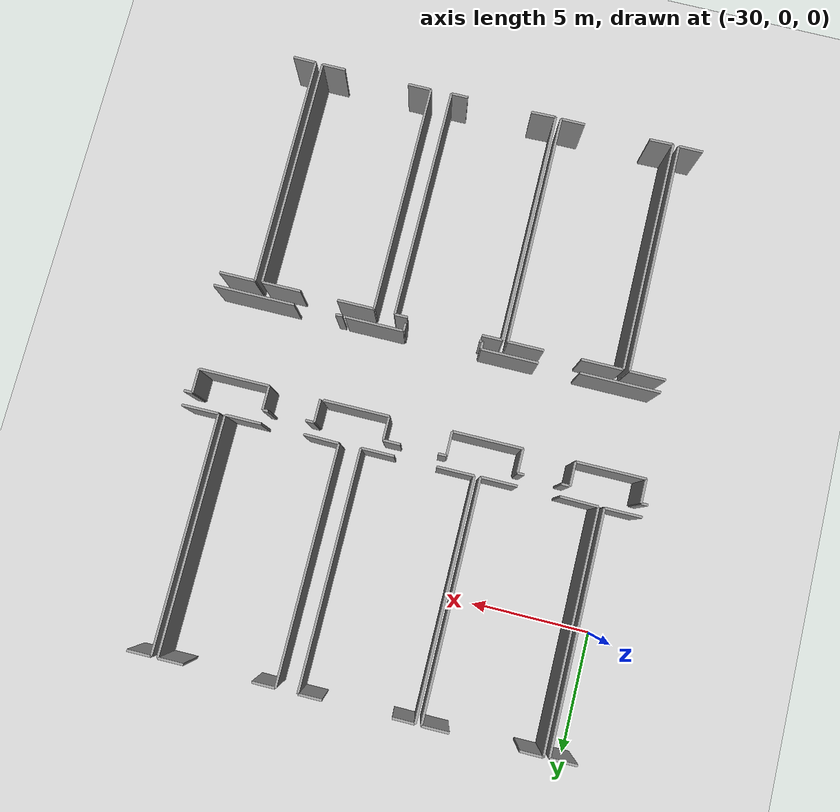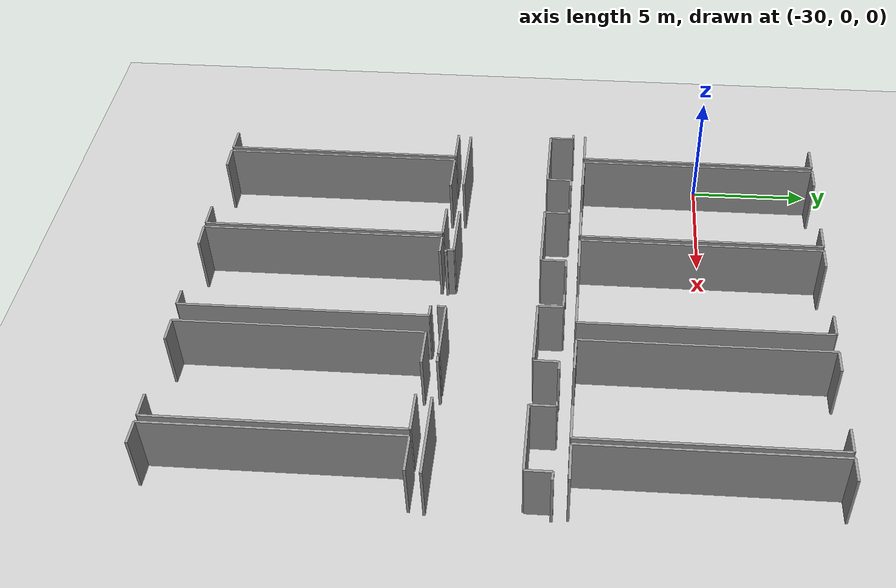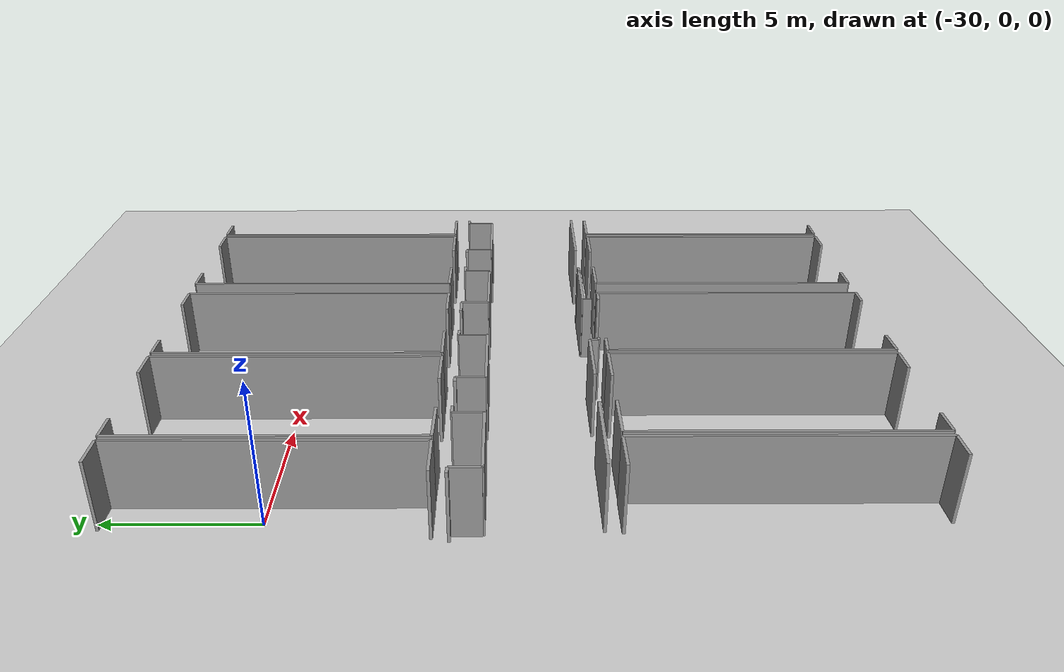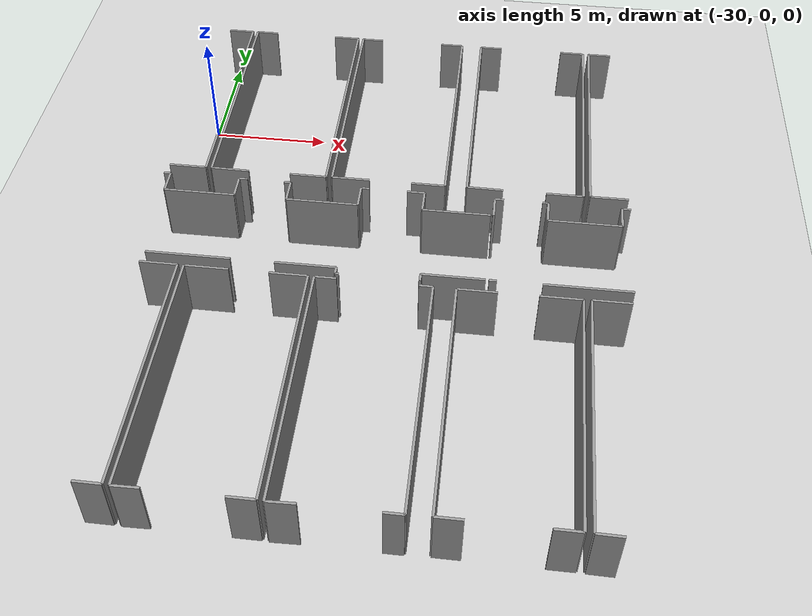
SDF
<sdf version="1.6">
 <world name="default">
  <model name="ground_plane">
   <static>1</static>
   <link name="link">
    <collision name="collision">
     <geometry><plane><normal>0 0 1</normal><size>100 100</size></plane></geometry>
     <surface><friction><ode><mu>100</mu><mu2>50</mu2></ode></friction></surface>
    </collision>
    <visual name="visual">
     <cast_shadows>0</cast_shadows>
     <geometry><plane><normal>0 0 1</normal><size>100 100</size></plane></geometry>
     <material>
      <script><uri>file://media/materials/scripts/gazebo.material</uri><name>Gazebo/Grey</name></script>
     </material>
    </visual>
   </link>
  </model>
  <model name="50055639">
   <static>1</static>
   <link name="Wall_63">
    <collision name="Wall_63_Collision">
     <geometry><box><size>0.287005420226 0.1 2.5</size></box></geometry>
     <pose>0.143502710113 0 1.25 0 0 0</pose>
    </collision>
    <visual name="Wall_63_Visual">
     <pose>0.143502710113 0 1.25 0 0 0</pose>
     <geometry><box><size>0.287005420226 0.1 2.5</size></box></geometry>
     <material>
      <script><uri>file://media/materials/scripts/gazebo.material</uri><name>Gazebo/Grey</name></script>
      <ambient>1 1 1 1</ambient>
     </material>
    </visual>
    <pose>39.5690475888 -26.5200624532 0 0 0 0.0</pose>
   </link>
   <link name="Wall_64">
    <collision name="Wall_64_Collision">
     <geometry><box><size>1.01410274312 0.1 2.5</size></box></geometry>
     <pose>0.507051371558 0 1.25 0 0 0</pose>
    </collision>
    <visual name="Wall_64_Visual">
     <pose>0.507051371558 0 1.25 0 0 0</pose>
     <geometry><box><size>1.01410274312 0.1 2.5</size></box></geometry>
     <material>
      <script><uri>file://media/materials/scripts/gazebo.material</uri><name>Gazebo/Grey</name></script>
      <ambient>1 1 1 1</ambient>
     </material>
    </visual>
    <pose>39.8560530091 -26.5200624532 0 0 0 -1.57079632679</pose>
   </link>
   <link name="Wall_65">
    <collision name="Wall_65_Collision">
     <geometry><box><size>2.93618857817 0.1 2.5</size></box></geometry>
     <pose>1.46809428909 0 1.25 0 0 0</pose>
    </collision>
    <visual name="Wall_65_Visual">
     <pose>1.46809428909 0 1.25 0 0 0</pose>
     <geometry><box><size>2.93618857817 0.1 2.5</size></box></geometry>
     <material>
      <script><uri>file://media/materials/scripts/gazebo.material</uri><name>Gazebo/Grey</name></script>
      <ambient>1 1 1 1</ambient>
     </material>
    </visual>
    <pose>39.8560530091 -27.5341651963 0 0 0 0.0</pose>
   </link>
   <link name="Wall_66">
    <collision name="Wall_66_Collision">
     <geometry><box><size>1.01549905432 0.1 2.5</size></box></geometry>
     <pose>0.507749527158 0 1.25 0 0 0</pose>
    </collision>
    <visual name="Wall_66_Visual">
     <pose>0.507749527158 0 1.25 0 0 0</pose>
     <geometry><box><size>1.01549905432 0.1 2.5</size></box></geometry>
     <material>
      <script><uri>file://media/materials/scripts/gazebo.material</uri><name>Gazebo/Grey</name></script>
      <ambient>1 1 1 1</ambient>
     </material>
    </visual>
    <pose>42.7922415872 -27.5341651963 0 0 0 1.57079632679</pose>
   </link>
   <link name="Wall_67">
    <collision name="Wall_67_Collision">
     <geometry><box><size>0.366087409081 0.1 2.5</size></box></geometry>
     <pose>0.183043704541 0 1.25 0 0 0</pose>
    </collision>
    <visual name="Wall_67_Visual">
     <pose>0.183043704541 0 1.25 0 0 0</pose>
     <geometry><box><size>0.366087409081 0.1 2.5</size></box></geometry>
     <material>
      <script><uri>file://media/materials/scripts/gazebo.material</uri><name>Gazebo/Grey</name></script>
      <ambient>1 1 1 1</ambient>
     </material>
    </visual>
    <pose>42.7922415872 -26.518666142 0 0 0 0.0</pose>
   </link>
   <link name="Wall_68">
    <collision name="Wall_68_Collision">
     <geometry><box><size>0.275834930629 0.1 2.5</size></box></geometry>
     <pose>0.137917465314 0 1.25 0 0 0</pose>
    </collision>
    <visual name="Wall_68_Visual">
     <pose>0.137917465314 0 1.25 0 0 0</pose>
     <geometry><box><size>0.275834930629 0.1 2.5</size></box></geometry>
     <material>
      <script><uri>file://media/materials/scripts/gazebo.material</uri><name>Gazebo/Grey</name></script>
      <ambient>1 1 1 1</ambient>
     </material>
    </visual>
    <pose>44.7073458663 -26.518666142 0 0 0 0.0</pose>
   </link>
   <link name="Wall_69">
    <collision name="Wall_69_Collision">
     <geometry><box><size>1.02235367293 0.1 2.5</size></box></geometry>
     <pose>0.511176836467 0 1.25 0 0 0</pose>
    </collision>
    <visual name="Wall_69_Visual">
     <pose>0.511176836467 0 1.25 0 0 0</pose>
     <geometry><box><size>1.02235367293 0.1 2.5</size></box></geometry>
     <material>
      <script><uri>file://media/materials/scripts/gazebo.material</uri><name>Gazebo/Grey</name></script>
      <ambient>1 1 1 1</ambient>
     </material>
    </visual>
    <pose>44.9831807969 -26.518666142 0 0 0 -1.57079632679</pose>
   </link>
   <link name="Wall_70">
    <collision name="Wall_70_Collision">
     <geometry><box><size>2.96843067315 0.1 2.5</size></box></geometry>
     <pose>1.48421533657 0 1.25 0 0 0</pose>
    </collision>
    <visual name="Wall_70_Visual">
     <pose>1.48421533657 0 1.25 0 0 0</pose>
     <geometry><box><size>2.96843067315 0.1 2.5</size></box></geometry>
     <material>
      <script><uri>file://media/materials/scripts/gazebo.material</uri><name>Gazebo/Grey</name></script>
      <ambient>1 1 1 1</ambient>
     </material>
    </visual>
    <pose>44.9831807969 -27.5410198149 0 0 0 0.0</pose>
   </link>
   <link name="Wall_71">
    <collision name="Wall_71_Collision">
     <geometry><box><size>1.02324223461 0.1 2.5</size></box></geometry>
     <pose>0.511621117303 0 1.25 0 0 0</pose>
    </collision>
    <visual name="Wall_71_Visual">
     <pose>0.511621117303 0 1.25 0 0 0</pose>
     <geometry><box><size>1.02324223461 0.1 2.5</size></box></geometry>
     <material>
      <script><uri>file://media/materials/scripts/gazebo.material</uri><name>Gazebo/Grey</name></script>
      <ambient>1 1 1 1</ambient>
     </material>
    </visual>
    <pose>47.9516114701 -27.5410198149 0 0 0 1.57079632679</pose>
   </link>
   <link name="Wall_72">
    <collision name="Wall_72_Collision">
     <geometry><box><size>0.348316175631 0.1 2.5</size></box></geometry>
     <pose>0.174158087815 0 1.25 0 0 0</pose>
    </collision>
    <visual name="Wall_72_Visual">
     <pose>0.174158087815 0 1.25 0 0 0</pose>
     <geometry><box><size>0.348316175631 0.1 2.5</size></box></geometry>
     <material>
      <script><uri>file://media/materials/scripts/gazebo.material</uri><name>Gazebo/Grey</name></script>
      <ambient>1 1 1 1</ambient>
     </material>
    </visual>
    <pose>47.9516114701 -26.5177775803 0 0 0 0.0</pose>
   </link>
   <link name="Wall_73">
    <collision name="Wall_73_Collision">
     <geometry><box><size>0.726081823836 0.1 2.5</size></box></geometry>
     <pose>0.363040911918 0 1.25 0 0 0</pose>
    </collision>
    <visual name="Wall_73_Visual">
     <pose>0.363040911918 0 1.25 0 0 0</pose>
     <geometry><box><size>0.726081823836 0.1 2.5</size></box></geometry>
     <material>
      <script><uri>file://media/materials/scripts/gazebo.material</uri><name>Gazebo/Grey</name></script>
      <ambient>1 1 1 1</ambient>
     </material>
    </visual>
    <pose>49.8789017378 -26.5177775803 0 0 0 0.0</pose>
   </link>
   <link name="Wall_74">
    <collision name="Wall_74_Collision">
     <geometry><box><size>1.01092930857 0.1 2.5</size></box></geometry>
     <pose>0.505464654286 0 1.25 0 0 0</pose>
    </collision>
    <visual name="Wall_74_Visual">
     <pose>0.505464654286 0 1.25 0 0 0</pose>
     <geometry><box><size>1.01092930857 0.1 2.5</size></box></geometry>
     <material>
      <script><uri>file://media/materials/scripts/gazebo.material</uri><name>Gazebo/Grey</name></script>
      <ambient>1 1 1 1</ambient>
     </material>
    </visual>
    <pose>50.6049835616 -26.5177775803 0 0 0 -1.57079632679</pose>
   </link>
   <link name="Wall_75">
    <collision name="Wall_75_Collision">
     <geometry><box><size>2.78767184148 0.1 2.5</size></box></geometry>
     <pose>1.39383592074 0 1.25 0 0 0</pose>
    </collision>
    <visual name="Wall_75_Visual">
     <pose>1.39383592074 0 1.25 0 0 0</pose>
     <geometry><box><size>2.78767184148 0.1 2.5</size></box></geometry>
     <material>
      <script><uri>file://media/materials/scripts/gazebo.material</uri><name>Gazebo/Grey</name></script>
      <ambient>1 1 1 1</ambient>
     </material>
    </visual>
    <pose>50.6049835616 -27.5287068889 0 0 0 0.0</pose>
   </link>
   <link name="Wall_76">
    <collision name="Wall_76_Collision">
     <geometry><box><size>2.49850848576 0.1 2.5</size></box></geometry>
     <pose>1.24925424288 0 1.25 0 0 0</pose>
    </collision>
    <visual name="Wall_76_Visual">
     <pose>1.24925424288 0 1.25 0 0 0</pose>
     <geometry><box><size>2.49850848576 0.1 2.5</size></box></geometry>
     <material>
      <script><uri>file://media/materials/scripts/gazebo.material</uri><name>Gazebo/Grey</name></script>
      <ambient>1 1 1 1</ambient>
     </material>
    </visual>
    <pose>53.3926554031 -31.1325860953 0 0 0 3.14159265359</pose>
   </link>
   <link name="Wall_77">
    <collision name="Wall_77_Collision">
     <geometry><box><size>0.342096243923 0.1 2.5</size></box></geometry>
     <pose>0.171048121961 0 1.25 0 0 0</pose>
    </collision>
    <visual name="Wall_77_Visual">
     <pose>0.171048121961 0 1.25 0 0 0</pose>
     <geometry><box><size>0.342096243923 0.1 2.5</size></box></geometry>
     <material>
      <script><uri>file://media/materials/scripts/gazebo.material</uri><name>Gazebo/Grey</name></script>
      <ambient>1 1 1 1</ambient>
     </material>
    </visual>
    <pose>50.8941469173 -31.1325860953 0 0 0 -1.57079632679</pose>
   </link>
   <link name="Wall_78">
    <collision name="Wall_78_Collision">
     <geometry><box><size>0.143439241422 0.1 2.5</size></box></geometry>
     <pose>0.0717196207111 0 1.25 0 0 0</pose>
    </collision>
    <visual name="Wall_78_Visual">
     <pose>0.0717196207111 0 1.25 0 0 0</pose>
     <geometry><box><size>0.143439241422 0.1 2.5</size></box></geometry>
     <material>
      <script><uri>file://media/materials/scripts/gazebo.material</uri><name>Gazebo/Grey</name></script>
      <ambient>1 1 1 1</ambient>
     </material>
    </visual>
    <pose>47.7482577844 -31.4746823392 0 0 0 3.14159265359</pose>
   </link>
   <link name="Wall_79">
    <collision name="Wall_79_Collision">
     <geometry><box><size>0.320136076873 0.1 2.5</size></box></geometry>
     <pose>0.160068038437 0 1.25 0 0 0</pose>
    </collision>
    <visual name="Wall_79_Visual">
     <pose>0.160068038437 0 1.25 0 0 0</pose>
     <geometry><box><size>0.320136076873 0.1 2.5</size></box></geometry>
     <material>
      <script><uri>file://media/materials/scripts/gazebo.material</uri><name>Gazebo/Grey</name></script>
      <ambient>1 1 1 1</ambient>
     </material>
    </visual>
    <pose>47.604818543 -31.4746823392 0 0 0 1.57079632679</pose>
   </link>
   <link name="Wall_80">
    <collision name="Wall_80_Collision">
     <geometry><box><size>2.43948260323 0.1 2.5</size></box></geometry>
     <pose>1.21974130162 0 1.25 0 0 0</pose>
    </collision>
    <visual name="Wall_80_Visual">
     <pose>1.21974130162 0 1.25 0 0 0</pose>
     <geometry><box><size>2.43948260323 0.1 2.5</size></box></geometry>
     <material>
      <script><uri>file://media/materials/scripts/gazebo.material</uri><name>Gazebo/Grey</name></script>
      <ambient>1 1 1 1</ambient>
     </material>
    </visual>
    <pose>47.604818543 -31.1545462623 0 0 0 3.14159265359</pose>
   </link>
   <link name="Wall_81">
    <collision name="Wall_81_Collision">
     <geometry><box><size>3.40192183196 0.1 2.5</size></box></geometry>
     <pose>1.70096091598 0 1.25 0 0 0</pose>
    </collision>
    <visual name="Wall_81_Visual">
     <pose>1.70096091598 0 1.25 0 0 0</pose>
     <geometry><box><size>3.40192183196 0.1 2.5</size></box></geometry>
     <material>
      <script><uri>file://media/materials/scripts/gazebo.material</uri><name>Gazebo/Grey</name></script>
      <ambient>1 1 1 1</ambient>
     </material>
    </visual>
    <pose>43.4163926935 -31.1545462623 0 0 0 3.14159265359</pose>
   </link>
   <link name="Wall_108">
    <collision name="Wall_108_Collision">
     <geometry><box><size>1.12301501669 0.1 2.5</size></box></geometry>
     <pose>0.561507508346 0 1.25 0 0 0</pose>
    </collision>
    <visual name="Wall_108_Visual">
     <pose>0.561507508346 0 1.25 0 0 0</pose>
     <geometry><box><size>1.12301501669 0.1 2.5</size></box></geometry>
     <material>
      <script><uri>file://media/materials/scripts/gazebo.material</uri><name>Gazebo/Grey</name></script>
      <ambient>1 1 1 1</ambient>
     </material>
    </visual>
    <pose>40.1252871958 -15.9715660265 0 0 0 0.0</pose>
   </link>
   <link name="Wall_109">
    <collision name="Wall_109_Collision">
     <geometry><box><size>10.0119321139 0.1 2.5</size></box></geometry>
     <pose>5.00596605694 0 1.25 0 0 0</pose>
    </collision>
    <visual name="Wall_109_Visual">
     <pose>5.00596605694 0 1.25 0 0 0</pose>
     <geometry><box><size>10.0119321139 0.1 2.5</size></box></geometry>
     <material>
      <script><uri>file://media/materials/scripts/gazebo.material</uri><name>Gazebo/Grey</name></script>
      <ambient>1 1 1 1</ambient>
     </material>
    </visual>
    <pose>41.2483022125 -15.9715660265 0 0 0 -1.57079632679</pose>
   </link>
   <link name="Wall_110">
    <collision name="Wall_110_Collision">
     <geometry><box><size>1.56323385674 0.1 2.5</size></box></geometry>
     <pose>0.781616928369 0 1.25 0 0 0</pose>
    </collision>
    <visual name="Wall_110_Visual">
     <pose>0.781616928369 0 1.25 0 0 0</pose>
     <geometry><box><size>1.56323385674 0.1 2.5</size></box></geometry>
     <material>
      <script><uri>file://media/materials/scripts/gazebo.material</uri><name>Gazebo/Grey</name></script>
      <ambient>1 1 1 1</ambient>
     </material>
    </visual>
    <pose>41.2483022125 -25.9834981404 0 0 0 3.14159265359</pose>
   </link>
   <link name="Wall_112">
    <collision name="Wall_112_Collision">
     <geometry><box><size>10.0111704896 0.1 2.5</size></box></geometry>
     <pose>5.0055852448 0 1.25 0 0 0</pose>
    </collision>
    <visual name="Wall_112_Visual">
     <pose>5.0055852448 0 1.25 0 0 0</pose>
     <geometry><box><size>10.0111704896 0.1 2.5</size></box></geometry>
     <material>
      <script><uri>file://media/materials/scripts/gazebo.material</uri><name>Gazebo/Grey</name></script>
      <ambient>1 1 1 1</ambient>
     </material>
    </visual>
    <pose>41.4907526117 -25.9762627096 0 0 0 1.57079632679</pose>
   </link>
   <link name="Wall_113">
    <collision name="Wall_113_Collision">
     <geometry><box><size>0.973990530471 0.1 2.5</size></box></geometry>
     <pose>0.486995265236 0 1.25 0 0 0</pose>
    </collision>
    <visual name="Wall_113_Visual">
     <pose>0.486995265236 0 1.25 0 0 0</pose>
     <geometry><box><size>0.973990530471 0.1 2.5</size></box></geometry>
     <material>
      <script><uri>file://media/materials/scripts/gazebo.material</uri><name>Gazebo/Grey</name></script>
      <ambient>1 1 1 1</ambient>
     </material>
    </visual>
    <pose>41.4907526117 -15.96509222 0 0 0 0.0</pose>
   </link>
   <link name="Wall_114">
    <collision name="Wall_114_Collision">
     <geometry><box><size>1.12491907742 0.1 2.5</size></box></geometry>
     <pose>0.56245953871 0 1.25 0 0 0</pose>
    </collision>
    <visual name="Wall_114_Visual">
     <pose>0.56245953871 0 1.25 0 0 0</pose>
     <geometry><box><size>1.12491907742 0.1 2.5</size></box></geometry>
     <material>
      <script><uri>file://media/materials/scripts/gazebo.material</uri><name>Gazebo/Grey</name></script>
      <ambient>1 1 1 1</ambient>
     </material>
    </visual>
    <pose>45.2734865891 -15.96509222 0 0 0 0.0</pose>
   </link>
   <link name="Wall_115">
    <collision name="Wall_115_Collision">
     <geometry><box><size>10.0373195902 0.1 2.5</size></box></geometry>
     <pose>5.01865979512 0 1.25 0 0 0</pose>
    </collision>
    <visual name="Wall_115_Visual">
     <pose>5.01865979512 0 1.25 0 0 0</pose>
     <geometry><box><size>10.0373195902 0.1 2.5</size></box></geometry>
     <material>
      <script><uri>file://media/materials/scripts/gazebo.material</uri><name>Gazebo/Grey</name></script>
      <ambient>1 1 1 1</ambient>
     </material>
    </visual>
    <pose>46.3984056665 -15.96509222 0 0 0 -1.57079632679</pose>
   </link>
   <link name="Wall_116">
    <collision name="Wall_116_Collision">
     <geometry><box><size>1.53606925704 0.1 2.5</size></box></geometry>
     <pose>0.768034628518 0 1.25 0 0 0</pose>
    </collision>
    <visual name="Wall_116_Visual">
     <pose>0.768034628518 0 1.25 0 0 0</pose>
     <geometry><box><size>1.53606925704 0.1 2.5</size></box></geometry>
     <material>
      <script><uri>file://media/materials/scripts/gazebo.material</uri><name>Gazebo/Grey</name></script>
      <ambient>1 1 1 1</ambient>
     </material>
    </visual>
    <pose>46.3984056665 -26.0024118103 0 0 0 3.14159265359</pose>
   </link>
   <link name="Wall_117">
    <collision name="Wall_117_Collision">
     <geometry><box><size>1.61104760343 0.1 2.5</size></box></geometry>
     <pose>0.805523801716 0 1.25 0 0 0</pose>
    </collision>
    <visual name="Wall_117_Visual">
     <pose>0.805523801716 0 1.25 0 0 0</pose>
     <geometry><box><size>1.61104760343 0.1 2.5</size></box></geometry>
     <material>
      <script><uri>file://media/materials/scripts/gazebo.material</uri><name>Gazebo/Grey</name></script>
      <ambient>1 1 1 1</ambient>
     </material>
    </visual>
    <pose>43.1015879866 -26.0024118103 0 0 0 3.12536082475</pose>
   </link>
   <link name="Wall_118">
    <collision name="Wall_118_Collision">
     <geometry><box><size>10.0107896775 0.1 2.5</size></box></geometry>
     <pose>5.00539483873 0 1.25 0 0 0</pose>
    </collision>
    <visual name="Wall_118_Visual">
     <pose>5.00539483873 0 1.25 0 0 0</pose>
     <geometry><box><size>10.0107896775 0.1 2.5</size></box></geometry>
     <material>
      <script><uri>file://media/materials/scripts/gazebo.material</uri><name>Gazebo/Grey</name></script>
      <ambient>1 1 1 1</ambient>
     </material>
    </visual>
    <pose>46.6521534927 -25.9921298823 0 0 0 1.57079632679</pose>
   </link>
   <link name="Wall_119">
    <collision name="Wall_119_Collision">
     <geometry><box><size>0.936417065462 0.1 2.5</size></box></geometry>
     <pose>0.468208532731 0 1.25 0 0 0</pose>
    </collision>
    <visual name="Wall_119_Visual">
     <pose>0.468208532731 0 1.25 0 0 0</pose>
     <geometry><box><size>0.936417065462 0.1 2.5</size></box></geometry>
     <material>
      <script><uri>file://media/materials/scripts/gazebo.material</uri><name>Gazebo/Grey</name></script>
      <ambient>1 1 1 1</ambient>
     </material>
    </visual>
    <pose>46.6521534927 -15.9813402049 0 0 0 0.0</pose>
   </link>
   <link name="Wall_120">
    <collision name="Wall_120_Collision">
     <geometry><box><size>0.987826705086 0.1 2.5</size></box></geometry>
     <pose>0.493913352543 0 1.25 0 0 0</pose>
    </collision>
    <visual name="Wall_120_Visual">
     <pose>0.493913352543 0 1.25 0 0 0</pose>
     <geometry><box><size>0.987826705086 0.1 2.5</size></box></geometry>
     <material>
      <script><uri>file://media/materials/scripts/gazebo.material</uri><name>Gazebo/Grey</name></script>
      <ambient>1 1 1 1</ambient>
     </material>
    </visual>
    <pose>50.4230822935 -15.9813402049 0 0 0 0.0</pose>
   </link>
   <link name="Wall_121">
    <collision name="Wall_121_Collision">
     <geometry><box><size>10.0066007439 0.1 2.5</size></box></geometry>
     <pose>5.00330037193 0 1.25 0 0 0</pose>
    </collision>
    <visual name="Wall_121_Visual">
     <pose>5.00330037193 0 1.25 0 0 0</pose>
     <geometry><box><size>10.0066007439 0.1 2.5</size></box></geometry>
     <material>
      <script><uri>file://media/materials/scripts/gazebo.material</uri><name>Gazebo/Grey</name></script>
      <ambient>1 1 1 1</ambient>
     </material>
    </visual>
    <pose>51.4109089986 -15.9813402049 0 0 0 -1.57079632679</pose>
   </link>
   <link name="Wall_122">
    <collision name="Wall_122_Collision">
     <geometry><box><size>1.40545069117 0.1 2.5</size></box></geometry>
     <pose>0.702725345587 0 1.25 0 0 0</pose>
    </collision>
    <visual name="Wall_122_Visual">
     <pose>0.702725345587 0 1.25 0 0 0</pose>
     <geometry><box><size>1.40545069117 0.1 2.5</size></box></geometry>
     <material>
      <script><uri>file://media/materials/scripts/gazebo.material</uri><name>Gazebo/Grey</name></script>
      <ambient>1 1 1 1</ambient>
     </material>
    </visual>
    <pose>51.4109089986 -25.9879409487 0 0 0 3.14159265359</pose>
   </link>
   <link name="Wall_123">
    <collision name="Wall_123_Collision">
     <geometry><box><size>1.58367631523 0.1 2.5</size></box></geometry>
     <pose>0.791838157613 0 1.25 0 0 0</pose>
    </collision>
    <visual name="Wall_123_Visual">
     <pose>0.791838157613 0 1.25 0 0 0</pose>
     <geometry><box><size>1.58367631523 0.1 2.5</size></box></geometry>
     <material>
      <script><uri>file://media/materials/scripts/gazebo.material</uri><name>Gazebo/Grey</name></script>
      <ambient>1 1 1 1</ambient>
     </material>
    </visual>
    <pose>48.2358242679 -25.9879409487 0 0 0 -3.13894758121</pose>
   </link>
   <link name="Wall_124">
    <collision name="Wall_124_Collision">
     <geometry><box><size>10.0198022316 0.1 2.5</size></box></geometry>
     <pose>5.00990111578 0 1.25 0 0 0</pose>
    </collision>
    <visual name="Wall_124_Visual">
     <pose>5.00990111578 0 1.25 0 0 0</pose>
     <geometry><box><size>10.0198022316 0.1 2.5</size></box></geometry>
     <material>
      <script><uri>file://media/materials/scripts/gazebo.material</uri><name>Gazebo/Grey</name></script>
      <ambient>1 1 1 1</ambient>
     </material>
    </visual>
    <pose>46.8310082636 -41.7483593343 0 0 0 1.57079632679</pose>
   </link>
   <link name="Wall_125">
    <collision name="Wall_125_Collision">
     <geometry><box><size>0.873075311949 0.1 2.5</size></box></geometry>
     <pose>0.436537655974 0 1.25 0 0 0</pose>
    </collision>
    <visual name="Wall_125_Visual">
     <pose>0.436537655974 0 1.25 0 0 0</pose>
     <geometry><box><size>0.873075311949 0.1 2.5</size></box></geometry>
     <material>
      <script><uri>file://media/materials/scripts/gazebo.material</uri><name>Gazebo/Grey</name></script>
      <ambient>1 1 1 1</ambient>
     </material>
    </visual>
    <pose>46.8310082636 -31.7285571028 0 0 0 0.0</pose>
   </link>
   <link name="Wall_126">
    <collision name="Wall_126_Collision">
     <geometry><box><size>0.544307493114 0.1 2.5</size></box></geometry>
     <pose>0.272153746557 0 1.25 0 0 0</pose>
    </collision>
    <visual name="Wall_126_Visual">
     <pose>0.272153746557 0 1.25 0 0 0</pose>
     <geometry><box><size>0.544307493114 0.1 2.5</size></box></geometry>
     <material>
      <script><uri>file://media/materials/scripts/gazebo.material</uri><name>Gazebo/Grey</name></script>
      <ambient>1 1 1 1</ambient>
     </material>
    </visual>
    <pose>50.8763756839 -31.7285571028 0 0 0 0.0</pose>
   </link>
   <link name="Wall_127">
    <collision name="Wall_127_Collision">
     <geometry><box><size>9.98921032255 0.1 2.5</size></box></geometry>
     <pose>4.99460516127 0 1.25 0 0 0</pose>
    </collision>
    <visual name="Wall_127_Visual">
     <pose>4.99460516127 0 1.25 0 0 0</pose>
     <geometry><box><size>9.98921032255 0.1 2.5</size></box></geometry>
     <material>
      <script><uri>file://media/materials/scripts/gazebo.material</uri><name>Gazebo/Grey</name></script>
      <ambient>1 1 1 1</ambient>
     </material>
    </visual>
    <pose>51.420683177 -31.7285571028 0 0 0 -1.57079632679</pose>
   </link>
   <link name="Wall_128">
    <collision name="Wall_128_Collision">
     <geometry><box><size>0.733698066744 0.1 2.5</size></box></geometry>
     <pose>0.366849033372 0 1.25 0 0 0</pose>
    </collision>
    <visual name="Wall_128_Visual">
     <pose>0.366849033372 0 1.25 0 0 0</pose>
     <geometry><box><size>0.733698066744 0.1 2.5</size></box></geometry>
     <material>
      <script><uri>file://media/materials/scripts/gazebo.material</uri><name>Gazebo/Grey</name></script>
      <ambient>1 1 1 1</ambient>
     </material>
    </visual>
    <pose>51.420683177 -41.7177674253 0 0 0 3.14159265359</pose>
   </link>
   <link name="Wall_129">
    <collision name="Wall_129_Collision">
     <geometry><box><size>1.0679816173 0.1 2.5</size></box></geometry>
     <pose>0.533990808651 0 1.25 0 0 0</pose>
    </collision>
    <visual name="Wall_129_Visual">
     <pose>0.533990808651 0 1.25 0 0 0</pose>
     <geometry><box><size>1.0679816173 0.1 2.5</size></box></geometry>
     <material>
      <script><uri>file://media/materials/scripts/gazebo.material</uri><name>Gazebo/Grey</name></script>
      <ambient>1 1 1 1</ambient>
     </material>
    </visual>
    <pose>47.8985516445 -41.7177674253 0 0 0 -3.11294413233</pose>
   </link>
   <link name="Wall_130">
    <collision name="Wall_130_Collision">
     <geometry><box><size>10.022594854 0.1 2.5</size></box></geometry>
     <pose>5.01129742698 0 1.25 0 0 0</pose>
    </collision>
    <visual name="Wall_130_Visual">
     <pose>5.01129742698 0 1.25 0 0 0</pose>
     <geometry><box><size>10.022594854 0.1 2.5</size></box></geometry>
     <material>
      <script><uri>file://media/materials/scripts/gazebo.material</uri><name>Gazebo/Grey</name></script>
      <ambient>1 1 1 1</ambient>
     </material>
    </visual>
    <pose>41.6994376674 -41.7429010269 0 0 0 1.57079632679</pose>
   </link>
   <link name="Wall_131">
    <collision name="Wall_131_Collision">
     <geometry><box><size>1.77712334505 0.1 2.5</size></box></geometry>
     <pose>0.888561672527 0 1.25 0 0 0</pose>
    </collision>
    <visual name="Wall_131_Visual">
     <pose>0.888561672527 0 1.25 0 0 0</pose>
     <geometry><box><size>1.77712334505 0.1 2.5</size></box></geometry>
     <material>
      <script><uri>file://media/materials/scripts/gazebo.material</uri><name>Gazebo/Grey</name></script>
      <ambient>1 1 1 1</ambient>
     </material>
    </visual>
    <pose>41.6994376674 -31.720306173 0 0 0 0.0</pose>
   </link>
   <link name="Wall_132">
    <collision name="Wall_132_Collision">
     <geometry><box><size>1.5335305094 0.1 2.5</size></box></geometry>
     <pose>0.7667652547 0 1.25 0 0 0</pose>
    </collision>
    <visual name="Wall_132_Visual">
     <pose>0.7667652547 0 1.25 0 0 0</pose>
     <geometry><box><size>1.5335305094 0.1 2.5</size></box></geometry>
     <material>
      <script><uri>file://media/materials/scripts/gazebo.material</uri><name>Gazebo/Grey</name></script>
      <ambient>1 1 1 1</ambient>
     </material>
    </visual>
    <pose>45.0579469148 -31.720306173 0 0 0 0.0</pose>
   </link>
   <link name="Wall_133">
    <collision name="Wall_133_Collision">
     <geometry><box><size>10.0029195598 0.1 2.5</size></box></geometry>
     <pose>5.00145977989 0 1.25 0 0 0</pose>
    </collision>
    <visual name="Wall_133_Visual">
     <pose>5.00145977989 0 1.25 0 0 0</pose>
     <geometry><box><size>10.0029195598 0.1 2.5</size></box></geometry>
     <material>
      <script><uri>file://media/materials/scripts/gazebo.material</uri><name>Gazebo/Grey</name></script>
      <ambient>1 1 1 1</ambient>
     </material>
    </visual>
    <pose>46.5914774242 -31.720306173 0 0 0 -1.57079632679</pose>
   </link>
   <link name="Wall_134">
    <collision name="Wall_134_Collision">
     <geometry><box><size>1.04126734282 0.1 2.5</size></box></geometry>
     <pose>0.52063367141 0 1.25 0 0 0</pose>
    </collision>
    <visual name="Wall_134_Visual">
     <pose>0.52063367141 0 1.25 0 0 0</pose>
     <geometry><box><size>1.04126734282 0.1 2.5</size></box></geometry>
     <material>
      <script><uri>file://media/materials/scripts/gazebo.material</uri><name>Gazebo/Grey</name></script>
      <ambient>1 1 1 1</ambient>
     </material>
    </visual>
    <pose>46.5914774242 -41.7232257327 0 0 0 3.14159265359</pose>
   </link>
   <link name="Wall_135">
    <collision name="Wall_135_Collision">
     <geometry><box><size>1.01733951766 0.1 2.5</size></box></geometry>
     <pose>0.508669758832 0 1.25 0 0 0</pose>
    </collision>
    <visual name="Wall_135_Visual">
     <pose>0.508669758832 0 1.25 0 0 0</pose>
     <geometry><box><size>1.01733951766 0.1 2.5</size></box></geometry>
     <material>
      <script><uri>file://media/materials/scripts/gazebo.material</uri><name>Gazebo/Grey</name></script>
      <ambient>1 1 1 1</ambient>
     </material>
    </visual>
    <pose>42.7165869077 -41.7232257327 0 0 0 -3.12225149896</pose>
   </link>
   <link name="Wall_138">
    <collision name="Wall_138_Collision">
     <geometry><box><size>1.53137257391 0.1 2.5</size></box></geometry>
     <pose>0.765686286955 0 1.25 0 0 0</pose>
    </collision>
    <visual name="Wall_138_Visual">
     <pose>0.765686286955 0 1.25 0 0 0</pose>
     <geometry><box><size>1.53137257391 0.1 2.5</size></box></geometry>
     <material>
      <script><uri>file://media/materials/scripts/gazebo.material</uri><name>Gazebo/Grey</name></script>
      <ambient>1 1 1 1</ambient>
     </material>
    </visual>
    <pose>39.9173637645 -31.7076124348 0 0 0 0.0</pose>
   </link>
   <link name="Wall_139">
    <collision name="Wall_139_Collision">
     <geometry><box><size>10.0161210475 0.1 2.5</size></box></geometry>
     <pose>5.00806052374 0 1.25 0 0 0</pose>
    </collision>
    <visual name="Wall_139_Visual">
     <pose>5.00806052374 0 1.25 0 0 0</pose>
     <geometry><box><size>10.0161210475 0.1 2.5</size></box></geometry>
     <material>
      <script><uri>file://media/materials/scripts/gazebo.material</uri><name>Gazebo/Grey</name></script>
      <ambient>1 1 1 1</ambient>
     </material>
    </visual>
    <pose>41.4487363384 -31.7076124348 0 0 0 -1.57079632679</pose>
   </link>
   <link name="Wall_140">
    <collision name="Wall_140_Collision">
     <geometry><box><size>1.03796697089 0.1 2.5</size></box></geometry>
     <pose>0.518983485447 0 1.25 0 0 0</pose>
    </collision>
    <visual name="Wall_140_Visual">
     <pose>0.518983485447 0 1.25 0 0 0</pose>
     <geometry><box><size>1.03796697089 0.1 2.5</size></box></geometry>
     <material>
      <script><uri>file://media/materials/scripts/gazebo.material</uri><name>Gazebo/Grey</name></script>
      <ambient>1 1 1 1</ambient>
     </material>
    </visual>
    <pose>41.4487363384 -41.7237334823 0 0 0 3.14159265359</pose>
   </link>
   <link name="Wall_199">
    <collision name="Wall_199_Collision">
     <geometry><box><size>0.98452633316 0.1 2.5</size></box></geometry>
     <pose>0.49226316658 0 1.25 0 0 0</pose>
    </collision>
    <visual name="Wall_199_Visual">
     <pose>0.49226316658 0 1.25 0 0 0</pose>
     <geometry><box><size>0.98452633316 0.1 2.5</size></box></geometry>
     <material>
      <script><uri>file://media/materials/scripts/gazebo.material</uri><name>Gazebo/Grey</name></script>
      <ambient>1 1 1 1</ambient>
     </material>
    </visual>
    <pose>53.5178156615 -27.536069257 0 0 0 1.57079632679</pose>
   </link>
   <link name="Wall_200">
    <collision name="Wall_200_Collision">
     <geometry><box><size>0.375607712715 0.1 2.5</size></box></geometry>
     <pose>0.187803856358 0 1.25 0 0 0</pose>
    </collision>
    <visual name="Wall_200_Visual">
     <pose>0.187803856358 0 1.25 0 0 0</pose>
     <geometry><box><size>0.375607712715 0.1 2.5</size></box></geometry>
     <material>
      <script><uri>file://media/materials/scripts/gazebo.material</uri><name>Gazebo/Grey</name></script>
      <ambient>1 1 1 1</ambient>
     </material>
    </visual>
    <pose>53.5178156615 -26.5515429239 0 0 0 0.0</pose>
   </link>
   <link name="Wall_201">
    <collision name="Wall_201_Collision">
     <geometry><box><size>0.239530839437 0.1 2.5</size></box></geometry>
     <pose>0.119765419718 0 1.25 0 0 0</pose>
    </collision>
    <visual name="Wall_201_Visual">
     <pose>0.119765419718 0 1.25 0 0 0</pose>
     <geometry><box><size>0.239530839437 0.1 2.5</size></box></geometry>
     <material>
      <script><uri>file://media/materials/scripts/gazebo.material</uri><name>Gazebo/Grey</name></script>
      <ambient>1 1 1 1</ambient>
     </material>
    </visual>
    <pose>55.4704934056 -26.5515429239 0 0 0 0.0</pose>
   </link>
   <link name="Wall_202">
    <collision name="Wall_202_Collision">
     <geometry><box><size>1.01854555148 0.1 2.5</size></box></geometry>
     <pose>0.50927277574 0 1.25 0 0 0</pose>
    </collision>
    <visual name="Wall_202_Visual">
     <pose>0.50927277574 0 1.25 0 0 0</pose>
     <geometry><box><size>1.01854555148 0.1 2.5</size></box></geometry>
     <material>
      <script><uri>file://media/materials/scripts/gazebo.material</uri><name>Gazebo/Grey</name></script>
      <ambient>1 1 1 1</ambient>
     </material>
    </visual>
    <pose>55.710024245 -26.5515429239 0 0 0 -1.57079632679</pose>
   </link>
   <link name="Wall_203">
    <collision name="Wall_203_Collision">
     <geometry><box><size>2.99013696543 0.1 2.5</size></box></geometry>
     <pose>1.49506848272 0 1.25 0 0 0</pose>
    </collision>
    <visual name="Wall_203_Visual">
     <pose>1.49506848272 0 1.25 0 0 0</pose>
     <geometry><box><size>2.99013696543 0.1 2.5</size></box></geometry>
     <material>
      <script><uri>file://media/materials/scripts/gazebo.material</uri><name>Gazebo/Grey</name></script>
      <ambient>1 1 1 1</ambient>
     </material>
    </visual>
    <pose>55.710024245 -27.5700884754 0 0 0 0.0</pose>
   </link>
   <link name="Wall_204">
    <collision name="Wall_204_Collision">
     <geometry><box><size>1.01854555148 0.1 2.5</size></box></geometry>
     <pose>0.50927277574 0 1.25 0 0 0</pose>
    </collision>
    <visual name="Wall_204_Visual">
     <pose>0.50927277574 0 1.25 0 0 0</pose>
     <geometry><box><size>1.01854555148 0.1 2.5</size></box></geometry>
     <material>
      <script><uri>file://media/materials/scripts/gazebo.material</uri><name>Gazebo/Grey</name></script>
      <ambient>1 1 1 1</ambient>
     </material>
    </visual>
    <pose>58.7001612105 -27.5700884754 0 0 0 1.57079632679</pose>
   </link>
   <link name="Wall_205">
    <collision name="Wall_205_Collision">
     <geometry><box><size>0.355678543774 0.1 2.5</size></box></geometry>
     <pose>0.177839271887 0 1.25 0 0 0</pose>
    </collision>
    <visual name="Wall_205_Visual">
     <pose>0.177839271887 0 1.25 0 0 0</pose>
     <geometry><box><size>0.355678543774 0.1 2.5</size></box></geometry>
     <material>
      <script><uri>file://media/materials/scripts/gazebo.material</uri><name>Gazebo/Grey</name></script>
      <ambient>1 1 1 1</ambient>
     </material>
    </visual>
    <pose>58.7001612105 -26.5515429239 0 0 0 0.0</pose>
   </link>
   <link name="Wall_254">
    <collision name="Wall_254_Collision">
     <geometry><box><size>3.47935363485 0.1 2.5</size></box></geometry>
     <pose>1.73967681743 0 1.25 0 0 0</pose>
    </collision>
    <visual name="Wall_254_Visual">
     <pose>1.73967681743 0 1.25 0 0 0</pose>
     <geometry><box><size>3.47935363485 0.1 2.5</size></box></geometry>
     <material>
      <script><uri>file://media/materials/scripts/gazebo.material</uri><name>Gazebo/Grey</name></script>
      <ambient>1 1 1 1</ambient>
     </material>
    </visual>
    <pose>59.0626943729 -31.1310628467 0 0 0 3.14159265359</pose>
   </link>
   <link name="Wall_255">
    <collision name="Wall_255_Collision">
     <geometry><box><size>0.300487702726 0.1 2.5</size></box></geometry>
     <pose>0.150243851363 0 1.25 0 0 0</pose>
    </collision>
    <visual name="Wall_255_Visual">
     <pose>0.150243851363 0 1.25 0 0 0</pose>
     <geometry><box><size>0.300487702726 0.1 2.5</size></box></geometry>
     <material>
      <script><uri>file://media/materials/scripts/gazebo.material</uri><name>Gazebo/Grey</name></script>
      <ambient>1 1 1 1</ambient>
     </material>
    </visual>
    <pose>53.8176417573 -31.1310628467 0 0 0 -3.07522119085</pose>
   </link>
   <link name="Wall_256">
    <collision name="Wall_256_Collision">
     <geometry><box><size>9.96547303215 0.1 2.5</size></box></geometry>
     <pose>4.98273651608 0 1.25 0 0 0</pose>
    </collision>
    <visual name="Wall_256_Visual">
     <pose>4.98273651608 0 1.25 0 0 0</pose>
     <geometry><box><size>9.96547303215 0.1 2.5</size></box></geometry>
     <material>
      <script><uri>file://media/materials/scripts/gazebo.material</uri><name>Gazebo/Grey</name></script>
      <ambient>1 1 1 1</ambient>
     </material>
    </visual>
    <pose>52.3244773353 -25.9562066033 0 0 0 1.57079632679</pose>
   </link>
   <link name="Wall_257">
    <collision name="Wall_257_Collision">
     <geometry><box><size>0.96967465949 0.1 2.5</size></box></geometry>
     <pose>0.484837329745 0 1.25 0 0 0</pose>
    </collision>
    <visual name="Wall_257_Visual">
     <pose>0.484837329745 0 1.25 0 0 0</pose>
     <geometry><box><size>0.96967465949 0.1 2.5</size></box></geometry>
     <material>
      <script><uri>file://media/materials/scripts/gazebo.material</uri><name>Gazebo/Grey</name></script>
      <ambient>1 1 1 1</ambient>
     </material>
    </visual>
    <pose>52.3244773353 -15.9907335711 0 0 0 0.0</pose>
   </link>
   <link name="Wall_258">
    <collision name="Wall_258_Collision">
     <geometry><box><size>1.05967326318 0.1 2.5</size></box></geometry>
     <pose>0.52983663159 0 1.25 0 0 0</pose>
    </collision>
    <visual name="Wall_258_Visual">
     <pose>0.52983663159 0 1.25 0 0 0</pose>
     <geometry><box><size>1.05967326318 0.1 2.5</size></box></geometry>
     <material>
      <script><uri>file://media/materials/scripts/gazebo.material</uri><name>Gazebo/Grey</name></script>
      <ambient>1 1 1 1</ambient>
     </material>
    </visual>
    <pose>56.0874090811 -15.9907335711 0 0 0 0.0</pose>
   </link>
   <link name="Wall_259">
    <collision name="Wall_259_Collision">
     <geometry><box><size>9.98730626182 0.1 2.5</size></box></geometry>
     <pose>4.99365313091 0 1.25 0 0 0</pose>
    </collision>
    <visual name="Wall_259_Visual">
     <pose>4.99365313091 0 1.25 0 0 0</pose>
     <geometry><box><size>9.98730626182 0.1 2.5</size></box></geometry>
     <material>
      <script><uri>file://media/materials/scripts/gazebo.material</uri><name>Gazebo/Grey</name></script>
      <ambient>1 1 1 1</ambient>
     </material>
    </visual>
    <pose>57.1470823443 -15.9907335711 0 0 0 -1.57079632679</pose>
   </link>
   <link name="Wall_260">
    <collision name="Wall_260_Collision">
     <geometry><box><size>1.5363231318 0.1 2.5</size></box></geometry>
     <pose>0.7681615659 0 1.25 0 0 0</pose>
    </collision>
    <visual name="Wall_260_Visual">
     <pose>0.7681615659 0 1.25 0 0 0</pose>
     <geometry><box><size>1.5363231318 0.1 2.5</size></box></geometry>
     <material>
      <script><uri>file://media/materials/scripts/gazebo.material</uri><name>Gazebo/Grey</name></script>
      <ambient>1 1 1 1</ambient>
     </material>
    </visual>
    <pose>57.1470823443 -25.978039833 0 0 0 3.14159265359</pose>
   </link>
   <link name="Wall_261">
    <collision name="Wall_261_Collision">
     <geometry><box><size>1.49865483973 0.1 2.5</size></box></geometry>
     <pose>0.749327419863 0 1.25 0 0 0</pose>
    </collision>
    <visual name="Wall_261_Visual">
     <pose>0.749327419863 0 1.25 0 0 0</pose>
     <geometry><box><size>1.49865483973 0.1 2.5</size></box></geometry>
     <material>
      <script><uri>file://media/materials/scripts/gazebo.material</uri><name>Gazebo/Grey</name></script>
      <ambient>1 1 1 1</ambient>
     </material>
    </visual>
    <pose>53.8229731274 -25.978039833 0 0 0 3.12702358706</pose>
   </link>
   <link name="Wall_262">
    <collision name="Wall_262_Collision">
     <geometry><box><size>9.97524721055 0.1 2.5</size></box></geometry>
     <pose>4.98762360528 0 1.25 0 0 0</pose>
    </collision>
    <visual name="Wall_262_Visual">
     <pose>4.98762360528 0 1.25 0 0 0</pose>
     <geometry><box><size>9.97524721055 0.1 2.5</size></box></geometry>
     <material>
      <script><uri>file://media/materials/scripts/gazebo.material</uri><name>Gazebo/Grey</name></script>
      <ambient>1 1 1 1</ambient>
     </material>
    </visual>
    <pose>57.4155549068 -25.9661077191 0 0 0 1.57079632679</pose>
   </link>
   <link name="Wall_263">
    <collision name="Wall_263_Collision">
     <geometry><box><size>1.00547100116 0.1 2.5</size></box></geometry>
     <pose>0.502735500578 0 1.25 0 0 0</pose>
    </collision>
    <visual name="Wall_263_Visual">
     <pose>0.502735500578 0 1.25 0 0 0</pose>
     <geometry><box><size>1.00547100116 0.1 2.5</size></box></geometry>
     <material>
      <script><uri>file://media/materials/scripts/gazebo.material</uri><name>Gazebo/Grey</name></script>
      <ambient>1 1 1 1</ambient>
     </material>
    </visual>
    <pose>57.4155549068 -15.9908605085 0 0 0 0.0</pose>
   </link>
   <link name="Wall_267">
    <collision name="Wall_267_Collision">
     <geometry><box><size>1.56947683187 0.1 2.5</size></box></geometry>
     <pose>0.784738415934 0 1.25 0 0 0</pose>
    </collision>
    <visual name="Wall_267_Visual">
     <pose>0.784738415934 0 1.25 0 0 0</pose>
     <geometry><box><size>1.56947683187 0.1 2.5</size></box></geometry>
     <material>
      <script><uri>file://media/materials/scripts/gazebo.material</uri><name>Gazebo/Grey</name></script>
      <ambient>1 1 1 1</ambient>
     </material>
    </visual>
    <pose>58.9850086952 -25.9576029145 0 0 0 -3.13617374837</pose>
   </link>
   <link name="Wall_359">
    <collision name="Wall_359_Collision">
     <geometry><box><size>9.97359702459 0.1 2.5</size></box></geometry>
     <pose>4.98679851229 0 1.25 0 0 0</pose>
    </collision>
    <visual name="Wall_359_Visual">
     <pose>4.98679851229 0 1.25 0 0 0</pose>
     <geometry><box><size>9.97359702459 0.1 2.5</size></box></geometry>
     <material>
      <script><uri>file://media/materials/scripts/gazebo.material</uri><name>Gazebo/Grey</name></script>
      <ambient>1 1 1 1</ambient>
     </material>
    </visual>
    <pose>57.4396730093 -41.6959341957 0 0 0 1.57079632679</pose>
   </link>
   <link name="Wall_360">
    <collision name="Wall_360_Collision">
     <geometry><box><size>1.53670394394 0.1 2.5</size></box></geometry>
     <pose>0.768351971972 0 1.25 0 0 0</pose>
    </collision>
    <visual name="Wall_360_Visual">
     <pose>0.768351971972 0 1.25 0 0 0</pose>
     <geometry><box><size>1.53670394394 0.1 2.5</size></box></geometry>
     <material>
      <script><uri>file://media/materials/scripts/gazebo.material</uri><name>Gazebo/Grey</name></script>
      <ambient>1 1 1 1</ambient>
     </material>
    </visual>
    <pose>57.4396730093 -31.7223371711 0 0 0 0.0</pose>
   </link>
   <link name="Wall_364">
    <collision name="Wall_364_Collision">
     <geometry><box><size>0.980823102772 0.1 2.5</size></box></geometry>
     <pose>0.490411551386 0 1.25 0 0 0</pose>
    </collision>
    <visual name="Wall_364_Visual">
     <pose>0.490411551386 0 1.25 0 0 0</pose>
     <geometry><box><size>0.980823102772 0.1 2.5</size></box></geometry>
     <material>
      <script><uri>file://media/materials/scripts/gazebo.material</uri><name>Gazebo/Grey</name></script>
      <ambient>1 1 1 1</ambient>
     </material>
    </visual>
    <pose>58.420391221 -41.7102781198 0 0 0 3.12696775798</pose>
   </link>
   <link name="Wall_365">
    <collision name="Wall_365_Collision">
     <geometry><box><size>9.94122799223 0.1 2.5</size></box></geometry>
     <pose>4.97061399612 0 1.25 0 0 0</pose>
    </collision>
    <visual name="Wall_365_Visual">
     <pose>4.97061399612 0 1.25 0 0 0</pose>
     <geometry><box><size>9.94122799223 0.1 2.5</size></box></geometry>
     <material>
      <script><uri>file://media/materials/scripts/gazebo.material</uri><name>Gazebo/Grey</name></script>
      <ambient>1 1 1 1</ambient>
     </material>
    </visual>
    <pose>52.3147031569 -41.6848906434 0 0 0 1.57079632679</pose>
   </link>
   <link name="Wall_366">
    <collision name="Wall_366_Collision">
     <geometry><box><size>1.57872021732 0.1 2.5</size></box></geometry>
     <pose>0.789360108658 0 1.25 0 0 0</pose>
    </collision>
    <visual name="Wall_366_Visual">
     <pose>0.789360108658 0 1.25 0 0 0</pose>
     <geometry><box><size>1.57872021732 0.1 2.5</size></box></geometry>
     <material>
      <script><uri>file://media/materials/scripts/gazebo.material</uri><name>Gazebo/Grey</name></script>
      <ambient>1 1 1 1</ambient>
     </material>
    </visual>
    <pose>52.3147031569 -31.7436626512 0 0 0 0.0</pose>
   </link>
   <link name="Wall_367">
    <collision name="Wall_367_Collision">
     <geometry><box><size>1.66046789119 0.1 2.5</size></box></geometry>
     <pose>0.830233945595 0 1.25 0 0 0</pose>
    </collision>
    <visual name="Wall_367_Visual">
     <pose>0.830233945595 0 1.25 0 0 0</pose>
     <geometry><box><size>1.66046789119 0.1 2.5</size></box></geometry>
     <material>
      <script><uri>file://media/materials/scripts/gazebo.material</uri><name>Gazebo/Grey</name></script>
      <ambient>1 1 1 1</ambient>
     </material>
    </visual>
    <pose>55.4730321532 -31.7436626512 0 0 0 0.0</pose>
   </link>
   <link name="Wall_368">
    <collision name="Wall_368_Collision">
     <geometry><box><size>9.94173574176 0.1 2.5</size></box></geometry>
     <pose>4.97086787088 0 1.25 0 0 0</pose>
    </collision>
    <visual name="Wall_368_Visual">
     <pose>4.97086787088 0 1.25 0 0 0</pose>
     <geometry><box><size>9.94173574176 0.1 2.5</size></box></geometry>
     <material>
      <script><uri>file://media/materials/scripts/gazebo.material</uri><name>Gazebo/Grey</name></script>
      <ambient>1 1 1 1</ambient>
     </material>
    </visual>
    <pose>57.1335000444 -31.7436626512 0 0 0 -1.57079632679</pose>
   </link>
   <link name="Wall_369">
    <collision name="Wall_369_Collision">
     <geometry><box><size>1.00597875068 0.1 2.5</size></box></geometry>
     <pose>0.502989375341 0 1.25 0 0 0</pose>
    </collision>
    <visual name="Wall_369_Visual">
     <pose>0.502989375341 0 1.25 0 0 0</pose>
     <geometry><box><size>1.00597875068 0.1 2.5</size></box></geometry>
     <material>
      <script><uri>file://media/materials/scripts/gazebo.material</uri><name>Gazebo/Grey</name></script>
      <ambient>1 1 1 1</ambient>
     </material>
    </visual>
    <pose>57.1335000444 -41.685398393 0 0 0 3.14159265359</pose>
   </link>
   <link name="Wall_370">
    <collision name="Wall_370_Collision">
     <geometry><box><size>1.00432869307 0.1 2.5</size></box></geometry>
     <pose>0.502164346534 0 1.25 0 0 0</pose>
    </collision>
    <visual name="Wall_370_Visual">
     <pose>0.502164346534 0 1.25 0 0 0</pose>
     <geometry><box><size>1.00432869307 0.1 2.5</size></box></geometry>
     <material>
      <script><uri>file://media/materials/scripts/gazebo.material</uri><name>Gazebo/Grey</name></script>
      <ambient>1 1 1 1</ambient>
     </material>
    </visual>
    <pose>53.3190317217 -41.685398393 0 0 0 3.14108709246</pose>
   </link>
   <pose>-70.4 20.8983593343 0 0 0 0</pose>
  </model>
 </world>
</sdf>
